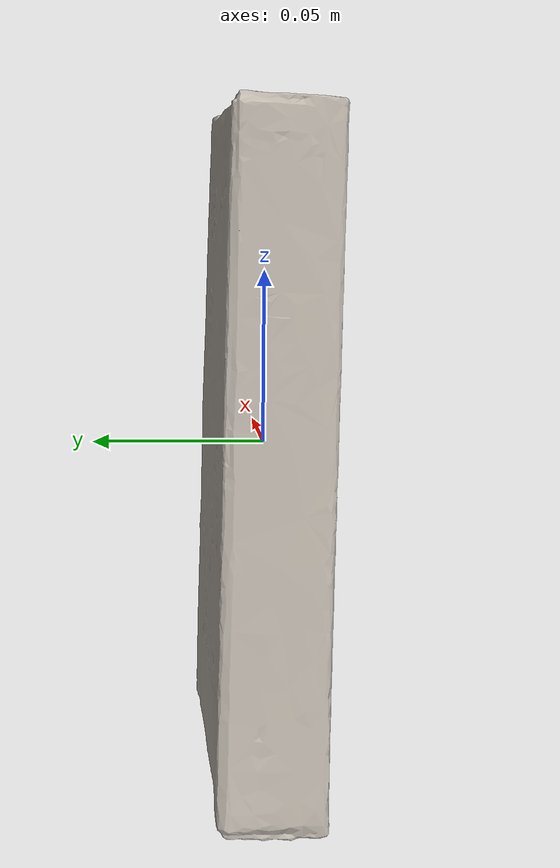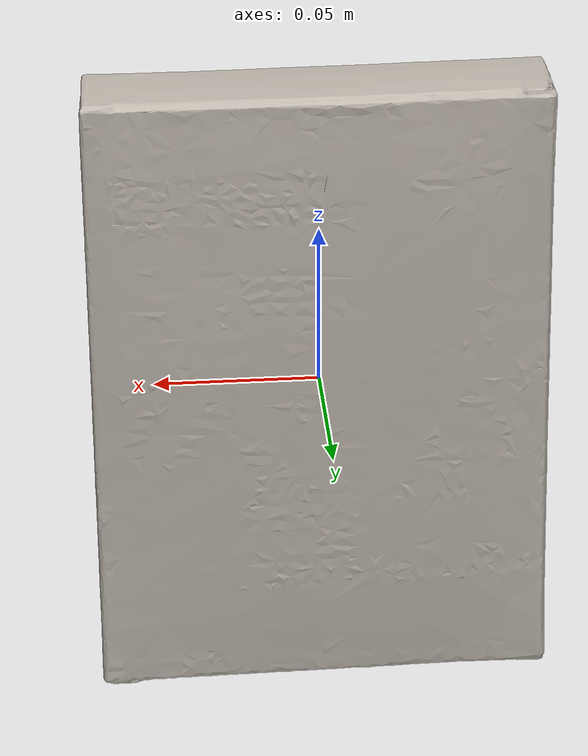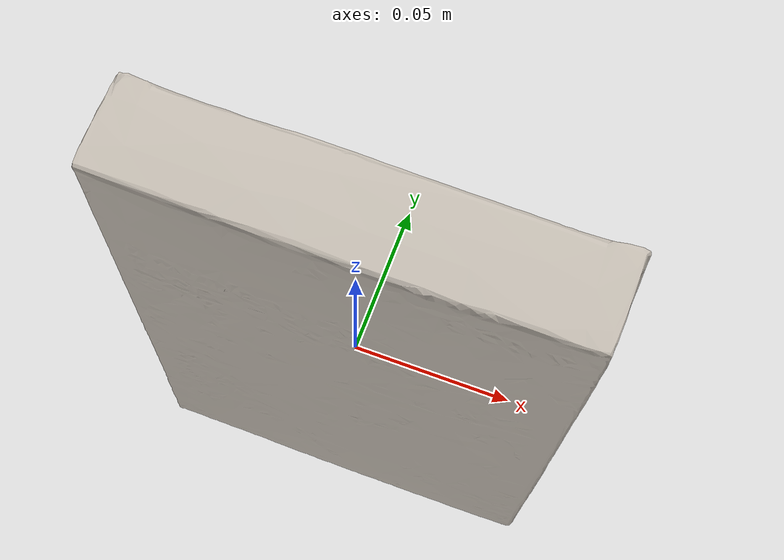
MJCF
<mujoco model="01">
  <default>
    <default class="01/visual">
      <geom group="2" type="mesh" contype="0" conaffinity="0"/>
    </default>
    <default class="01/collision">
      <geom group="3" type="mesh"/>
    </default>
  </default>
  <asset>
    <texture type="2d" name="img1" file="objects/01/img1.png"/>
    <material name="material_0.001" texture="img1" specular="0.0" shininess="0.0"/>
    <mesh file="objects/01/01.obj"/>
  </asset>
  <worldbody>
    <body name="01">
      <joint name="obj01" type="free"/>
      <geom material="material_0.001" mesh="01" class="01/visual"/>
      <geom mesh="01" class="01/collision" mass="0.5"/>
    </body>
  </worldbody>
</mujoco>
